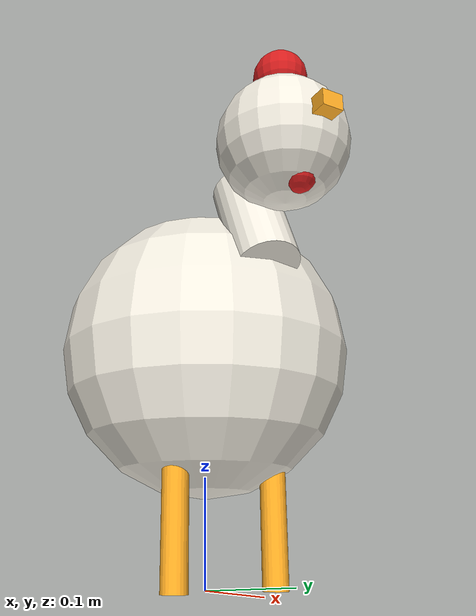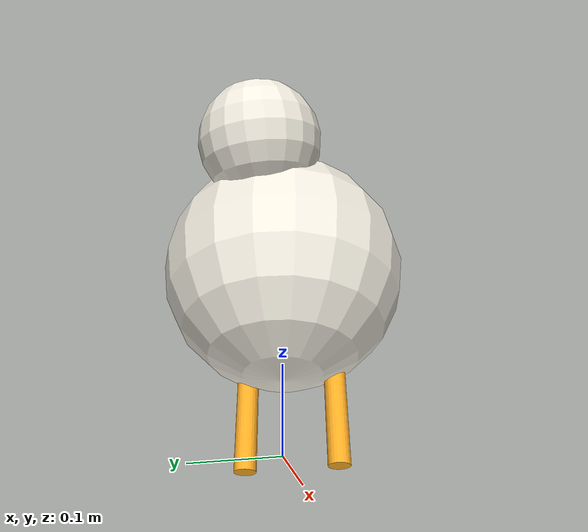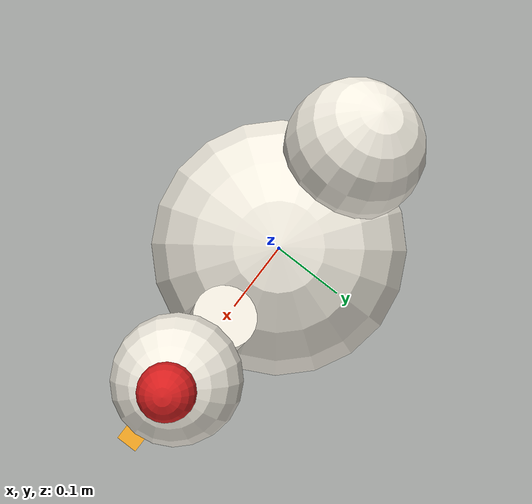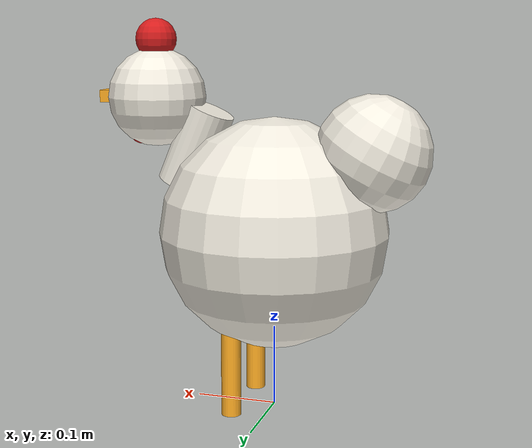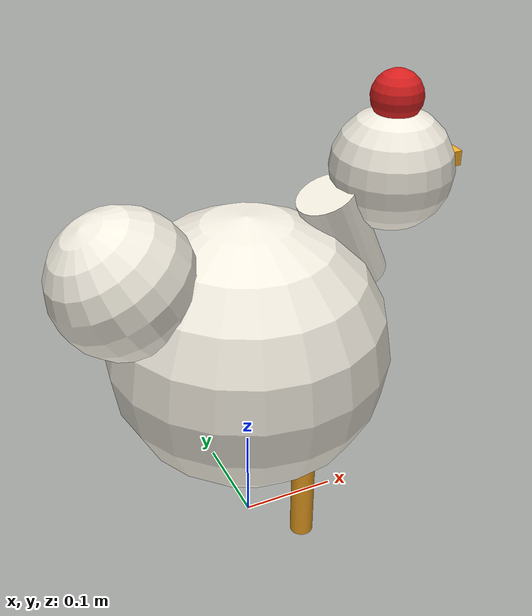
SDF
<?xml version="1.0"?>
<sdf version="1.10">
  <model name="chicken">
    <static>true</static>

    <!-- Body (slightly squat egg shape) -->
    <link name="body">
      <pose>0 0 0.22 0 0 0</pose>
      <visual name="v"><geometry><sphere><radius>0.14</radius></sphere></geometry>
        <material><ambient>0.85 0.83 0.78 1</ambient><diffuse>0.95 0.93 0.88 1</diffuse><specular>0.05 0.05 0.05 1</specular></material>
      </visual>
      <collision name="c"><geometry><sphere><radius>0.14</radius></sphere></geometry></collision>
    </link>

    <!-- Tail (raised back lump) -->
    <link name="tail">
      <pose>-0.12 0 0.32 0 -0.5 0</pose>
      <visual name="v"><geometry><sphere><radius>0.07</radius></sphere></geometry>
        <material><ambient>0.85 0.83 0.78 1</ambient><diffuse>0.95 0.93 0.88 1</diffuse></material>
      </visual>
    </link>

    <!-- Neck + head -->
    <link name="neck">
      <pose>0.10 0 0.32 0 -0.4 0</pose>
      <visual name="v"><geometry><cylinder><radius>0.030</radius><length>0.10</length></cylinder></geometry>
        <material><ambient>0.85 0.83 0.78 1</ambient><diffuse>0.95 0.93 0.88 1</diffuse></material>
      </visual>
    </link>
    <link name="head">
      <pose>0.15 0 0.38 0 0 0</pose>
      <visual name="v"><geometry><sphere><radius>0.06</radius></sphere></geometry>
        <material><ambient>0.85 0.83 0.78 1</ambient><diffuse>0.95 0.93 0.88 1</diffuse></material>
      </visual>
    </link>

    <!-- Red comb -->
    <link name="comb">
      <pose>0.15 0 0.45 0 0 0</pose>
      <visual name="v"><geometry><sphere><radius>0.025</radius></sphere></geometry>
        <material><ambient>0.65 0.10 0.10 1</ambient><diffuse>0.85 0.12 0.12 1</diffuse></material>
      </visual>
    </link>

    <!-- Wattle (under beak) -->
    <link name="wattle">
      <pose>0.17 0 0.34 0 0 0</pose>
      <visual name="v"><geometry><sphere><radius>0.018</radius></sphere></geometry>
        <material><ambient>0.65 0.10 0.10 1</ambient><diffuse>0.85 0.12 0.12 1</diffuse></material>
      </visual>
    </link>

    <!-- Orange beak (cone-like via small box rotated) -->
    <link name="beak">
      <pose>0.20 0 0.38 0 0 0</pose>
      <visual name="v"><geometry><box><size>0.045 0.020 0.015</size></box></geometry>
        <material><ambient>0.85 0.55 0.10 1</ambient><diffuse>1.0 0.68 0.14 1</diffuse></material>
      </visual>
    </link>

    <!-- Eyes -->
    <link name="eye_l">
      <pose>0.175 0.040 0.395 0 0 0</pose>
      <visual name="v"><geometry><sphere><radius>0.008</radius></sphere></geometry>
        <material><ambient>0.05 0.05 0.05 1</ambient><diffuse>0.05 0.05 0.05 1</diffuse></material>
      </visual>
    </link>
    <link name="eye_r">
      <pose>0.175 -0.040 0.395 0 0 0</pose>
      <visual name="v"><geometry><sphere><radius>0.008</radius></sphere></geometry>
        <material><ambient>0.05 0.05 0.05 1</ambient><diffuse>0.05 0.05 0.05 1</diffuse></material>
      </visual>
    </link>

    <!-- Yellow legs -->
    <link name="leg_l">
      <pose>0.04 0.05 0.06 0 0 0</pose>
      <visual name="v"><geometry><cylinder><radius>0.012</radius><length>0.12</length></cylinder></geometry>
        <material><ambient>0.85 0.55 0.10 1</ambient><diffuse>1.0 0.68 0.14 1</diffuse></material>
      </visual>
    </link>
    <link name="leg_r">
      <pose>0.04 -0.05 0.06 0 0 0</pose>
      <visual name="v"><geometry><cylinder><radius>0.012</radius><length>0.12</length></cylinder></geometry>
        <material><ambient>0.85 0.55 0.10 1</ambient><diffuse>1.0 0.68 0.14 1</diffuse></material>
      </visual>
    </link>

    <joint name="j_tail"  type="fixed"><parent>body</parent><child>tail</child></joint>
    <joint name="j_neck"  type="fixed"><parent>body</parent><child>neck</child></joint>
    <joint name="j_head"  type="fixed"><parent>body</parent><child>head</child></joint>
    <joint name="j_comb"  type="fixed"><parent>body</parent><child>comb</child></joint>
    <joint name="j_watt"  type="fixed"><parent>body</parent><child>wattle</child></joint>
    <joint name="j_beak"  type="fixed"><parent>body</parent><child>beak</child></joint>
    <joint name="j_el"    type="fixed"><parent>body</parent><child>eye_l</child></joint>
    <joint name="j_er"    type="fixed"><parent>body</parent><child>eye_r</child></joint>
    <joint name="j_ll"    type="fixed"><parent>body</parent><child>leg_l</child></joint>
    <joint name="j_lr"    type="fixed"><parent>body</parent><child>leg_r</child></joint>
  </model>
</sdf>
